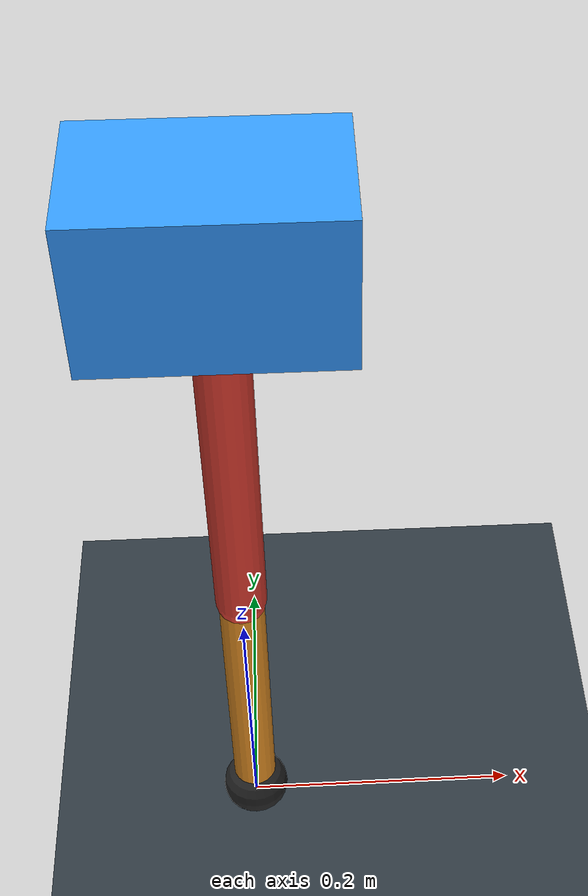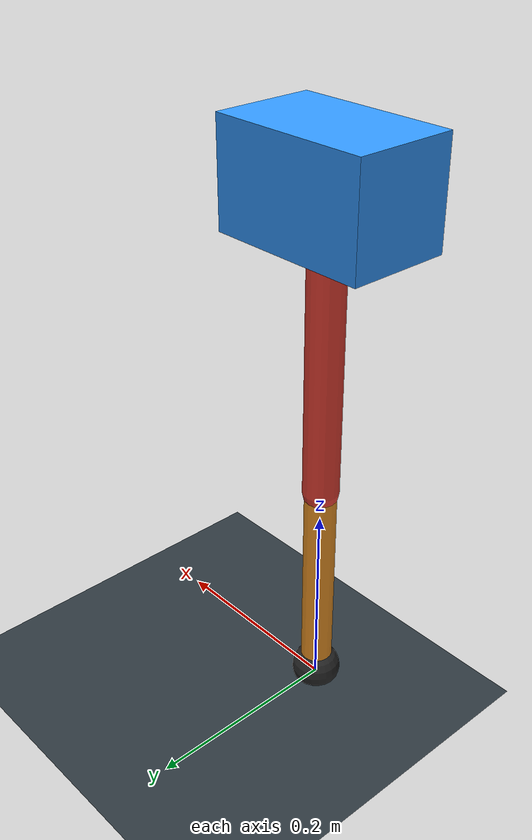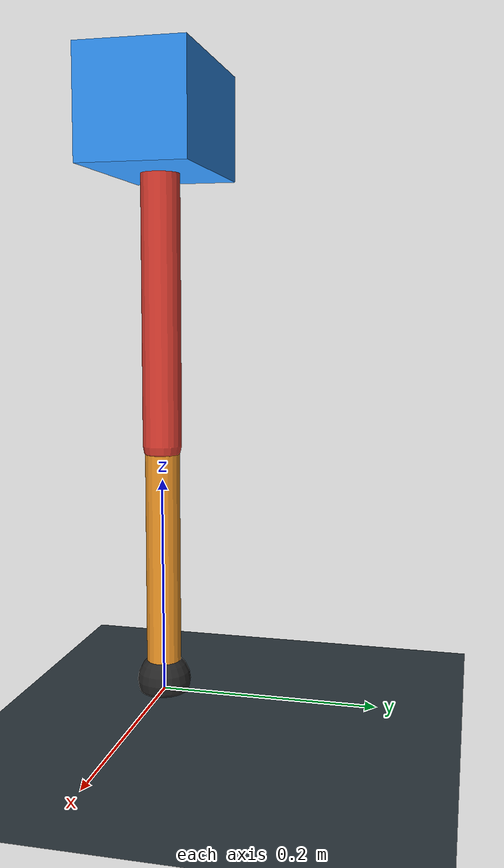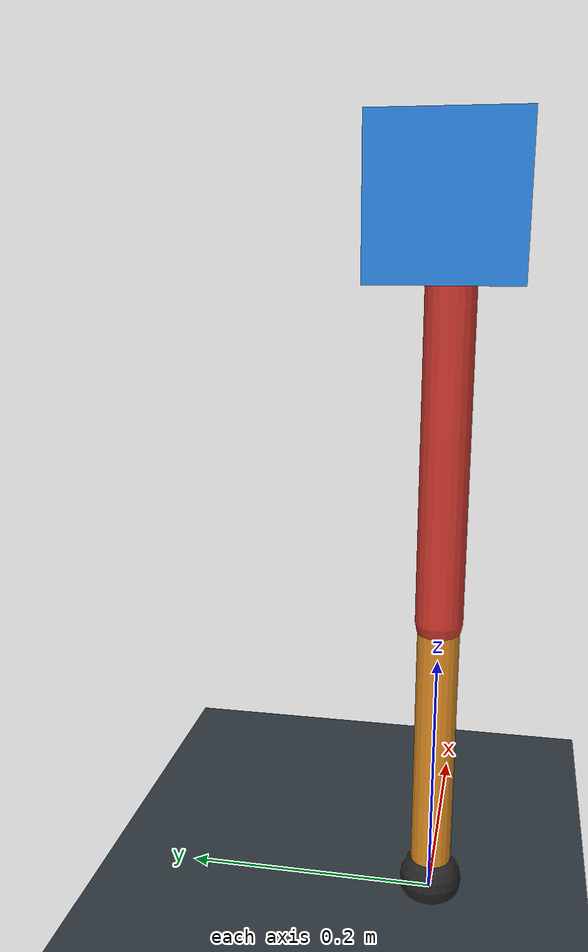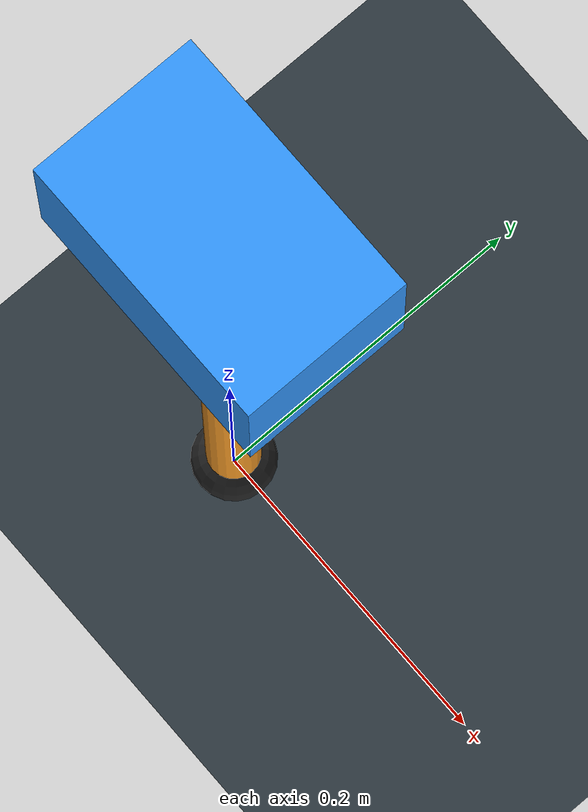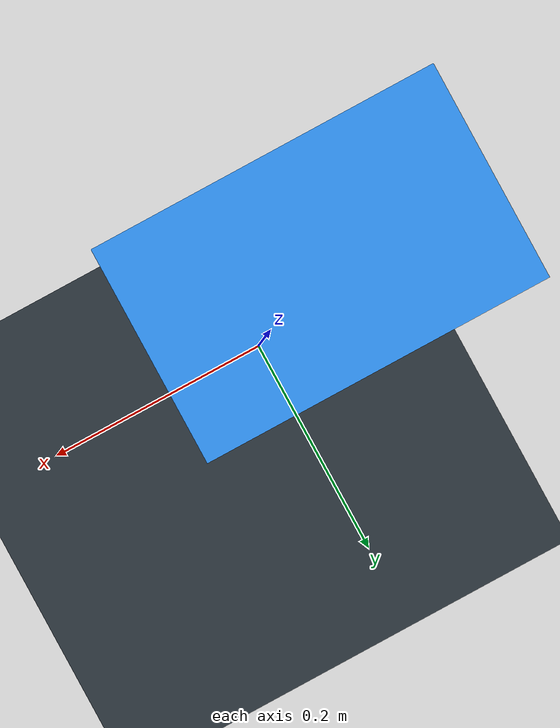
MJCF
<mujoco model="single_axis_two_bar">
  <compiler angle="radian" inertiafromgeom="true"/>
  <option timestep="0.001" integrator="implicitfast" gravity="0 0 -9.81"/>
  <default>
    <joint damping="0.08"/>
    <geom friction="1.2 0.01 0.0001" condim="3"/>
  </default>
  <worldbody>
    <geom name="floor" type="plane" size="5 5 0.1" rgba="0.18 0.22 0.25 1"/>
    <body name="carriage" pos="0 0 0.531476911767857">
      <joint name="pole_slide" type="slide" axis="0 0 1"/>
      <geom name="payload" type="box" size="0.08 0.05 0.05" mass="2.02253682971128" rgba="0.2 0.6 1 1"/>
      <body name="thigh" pos="0 0 0">
        <joint name="hip" type="hinge" axis="0 1 0"/>
        <geom name="thigh_link" type="capsule" fromto="0 0 0 0 0 -0.2992822200173251" size="0.018" mass="0.21324253642796798" rgba="0.9 0.25 0.2 1"/>
        <body name="shank" pos="0 0 -0.2992822200173251">
          <joint name="knee" type="hinge" axis="0 1 0"/>
          <geom name="shank_link" type="capsule" fromto="0 0 0 0 0 -0.22285892613510477" size="0.016" mass="0.15878992969215427" rgba="0.95 0.6 0.15 1"/>
          <geom name="foot" type="sphere" pos="0 0 -0.22285892613510477" size="0.025" mass="0.03" rgba="0.15 0.15 0.15 1"/>
          <site name="toe" pos="0 0 -0.22285892613510477" size="0.008"/>
        </body>
      </body>
    </body>
  </worldbody>
  <actuator>
    <motor name="hip_motor" joint="hip" ctrlrange="-26.810725266770792 26.810725266770792"/>
    <motor name="knee_motor" joint="knee" ctrlrange="-40.76113788819291 40.76113788819291"/>
  </actuator>
</mujoco>
